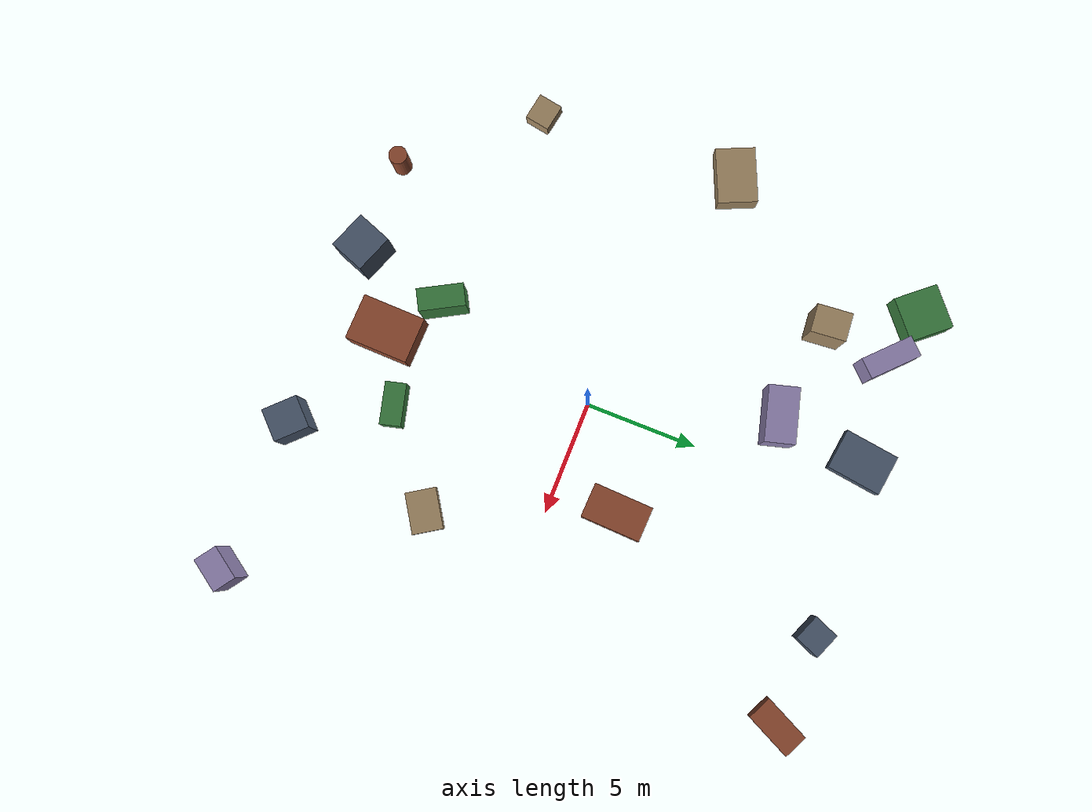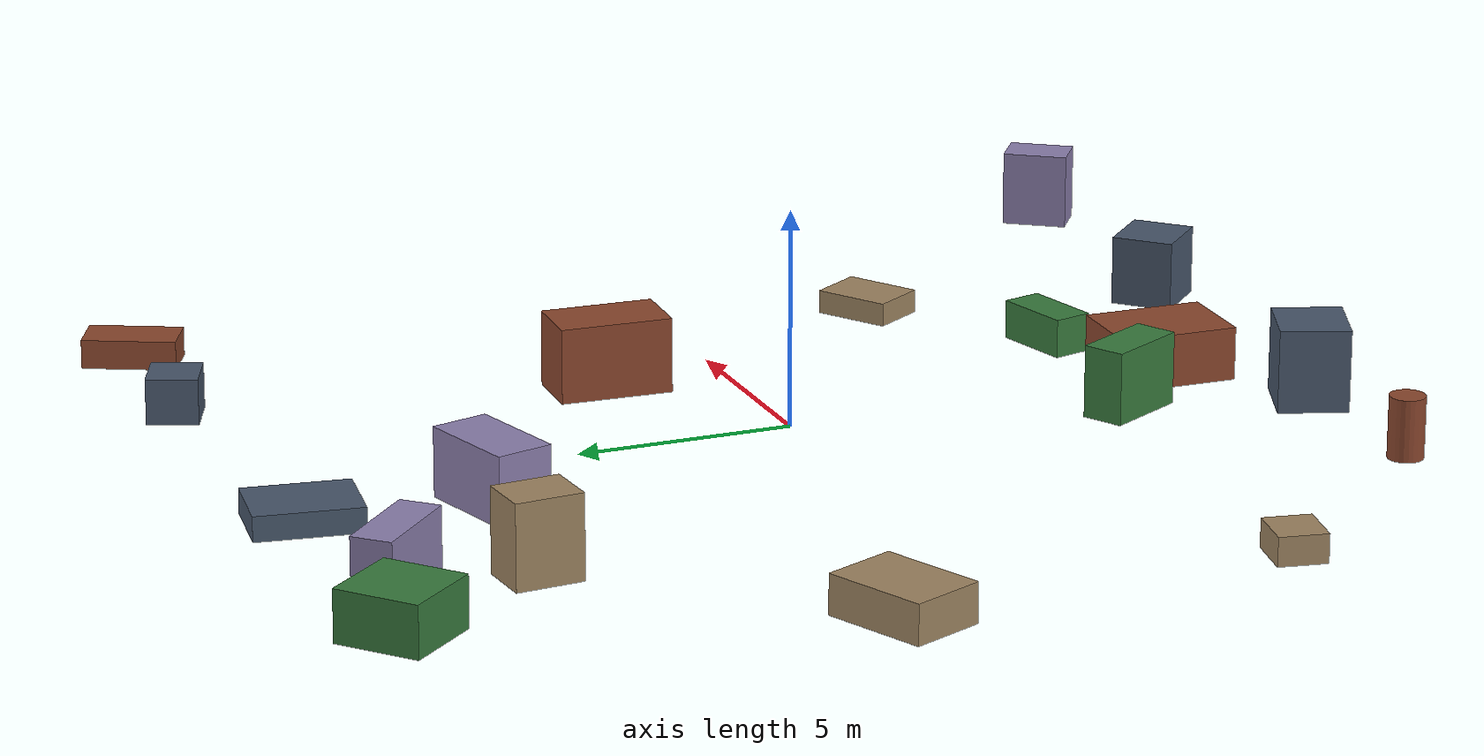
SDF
<sdf version="1.10">
 <world name="robotx_task1_uav_view">
  <gravity>0 0 -9.81</gravity>
  <physics name="physics" type="ode">
   <max_step_size>0.002</max_step_size>
   <real_time_factor>1.0</real_time_factor>
  </physics>
  <scene>
   <ambient>0.22 0.20 0.18 1.0</ambient>
   <background>0.74 0.55 0.44 1.0</background>
   <shadows>true</shadows>
   <grid>false</grid>
  </scene>
  <light name="sun" type="directional">
   <pose>0 0 300 0 0 0</pose>
   <diffuse>0.95 0.74 0.56 1.0</diffuse>
   <specular>1.00 0.87 0.71 1.0</specular>
   <direction>-0.40 0.20 -0.88</direction>
   <attenuation>
    <range>2500</range>
    <constant>0.85</constant>
    <linear>0.001</linear>
    <quadratic>0.00005</quadratic>
   </attenuation>
  </light>
  <plugin filename="gz-sim-physics-system" name="gz::sim::systems::Physics"/>
  <plugin filename="gz-sim-user-commands-system" name="gz::sim::systems::UserCommands"/>
  <plugin filename="gz-sim-scene-broadcaster-system" name="gz::sim::systems::SceneBroadcaster"/>
  <plugin filename="gz-sim-sensors-system" name="gz::sim::systems::Sensors">
   <render_engine>ogre2</render_engine>
  </plugin>
  <model name="scene_clutter_box_000">
   <static>true</static>
   <pose>-11.747 2.415 0.473 0 0 0.410127</pose>
   <link name="link">
    <visual name="v">
     <geometry><box><size>2.454 1.757 0.906</size></box></geometry>
     <material><ambient>0.45 0.38 0.32 1.0</ambient><diffuse>0.62 0.52 0.38 1.0</diffuse></material>
    </visual>
   </link>
  </model>
  <model name="scene_clutter_box_001">
   <static>true</static>
   <pose>5.690 12.446 0.553 0 0 1.177083</pose>
   <link name="link">
    <visual name="v">
     <geometry><box><size>1.171 1.220 1.065</size></box></geometry>
     <material><ambient>0.18 0.22 0.28 1.0</ambient><diffuse>0.28 0.34 0.42 1.0</diffuse></material>
    </visual>
   </link>
  </model>
  <model name="scene_clutter_box_002">
   <static>true</static>
   <pose>3.932 2.841 0.893 0 0 -0.041319</pose>
   <link name="link">
    <visual name="v">
     <geometry><box><size>1.508 2.615 1.746</size></box></geometry>
     <material><ambient>0.35 0.16 0.12 1.0</ambient><diffuse>0.55 0.28 0.18 1.0</diffuse></material>
    </visual>
   </link>
  </model>
  <model name="scene_clutter_box_003">
   <static>true</static>
   <pose>-8.846 12.027 0.605 0 0 -0.866386</pose>
   <link name="link">
    <visual name="v">
     <geometry><box><size>1.957 1.973 1.170</size></box></geometry>
     <material><ambient>0.12 0.30 0.14 1.0</ambient><diffuse>0.22 0.48 0.24 1.0</diffuse></material>
    </visual>
   </link>
  </model>
  <model name="scene_clutter_box_004">
   <static>true</static>
   <pose>-6.424 11.310 0.779 0 0 0.803604</pose>
   <link name="link">
    <visual name="v">
     <geometry><box><size>0.942 2.349 1.517</size></box></geometry>
     <material><ambient>0.40 0.35 0.50 1.0</ambient><diffuse>0.55 0.50 0.68 1.0</diffuse></material>
    </visual>
   </link>
  </model>
  <model name="scene_clutter_box_005">
   <static>true</static>
   <pose>-6.801 8.395 0.985 0 0 1.654139</pose>
   <link name="link">
    <visual name="v">
     <geometry><box><size>1.555 1.237 1.930</size></box></geometry>
     <material><ambient>0.45 0.38 0.32 1.0</ambient><diffuse>0.62 0.52 0.38 1.0</diffuse></material>
    </visual>
   </link>
  </model>
  <model name="scene_clutter_box_006">
   <static>true</static>
   <pose>-2.767 -11.475 0.979 0 0 -1.932173</pose>
   <link name="link">
    <visual name="v">
     <geometry><box><size>1.609 1.745 1.918</size></box></geometry>
     <material><ambient>0.18 0.22 0.28 1.0</ambient><diffuse>0.28 0.34 0.42 1.0</diffuse></material>
    </visual>
   </link>
  </model>
  <model name="scene_clutter_box_007">
   <static>true</static>
   <pose>9.750 12.271 0.359 0 0 -0.452150</pose>
   <link name="link">
    <visual name="v">
     <geometry><box><size>1.130 2.177 0.677</size></box></geometry>
     <material><ambient>0.35 0.16 0.12 1.0</ambient><diffuse>0.55 0.28 0.18 1.0</diffuse></material>
    </visual>
   </link>
  </model>
  <model name="scene_clutter_box_008">
   <static>true</static>
   <pose>-1.840 -7.434 0.857 0 0 2.073703</pose>
   <link name="link">
    <visual name="v">
     <geometry><box><size>2.029 0.988 1.673</size></box></geometry>
     <material><ambient>0.12 0.30 0.14 1.0</ambient><diffuse>0.22 0.48 0.24 1.0</diffuse></material>
    </visual>
   </link>
  </model>
  <model name="scene_clutter_box_009">
   <static>true</static>
   <pose>-2.437 7.837 0.817 0 0 0.264662</pose>
   <link name="link">
    <visual name="v">
     <geometry><box><size>2.447 1.343 1.595</size></box></geometry>
     <material><ambient>0.40 0.35 0.50 1.0</ambient><diffuse>0.55 0.50 0.68 1.0</diffuse></material>
    </visual>
   </link>
  </model>
  <model name="scene_clutter_box_010">
   <static>true</static>
   <pose>-11.437 -6.563 0.350 0 0 1.395791</pose>
   <link name="link">
    <visual name="v">
     <geometry><box><size>1.111 1.203 0.659</size></box></geometry>
     <material><ambient>0.45 0.38 0.32 1.0</ambient><diffuse>0.62 0.52 0.38 1.0</diffuse></material>
    </visual>
   </link>
  </model>
  <model name="scene_clutter_box_011">
   <static>true</static>
   <pose>5.351 -11.555 0.834 0 0 0.780943</pose>
   <link name="link">
    <visual name="v">
     <geometry><box><size>1.459 1.558 1.629</size></box></geometry>
     <material><ambient>0.18 0.22 0.28 1.0</ambient><diffuse>0.28 0.34 0.42 1.0</diffuse></material>
    </visual>
   </link>
  </model>
  <model name="scene_clutter_cyl_012">
   <static>true</static>
   <pose>-7.013 -11.603 0.763 0 0 -2.156860</pose>
   <link name="link">
    <visual name="v">
     <geometry><cylinder><radius>0.407</radius><length>1.425</length></cylinder></geometry>
     <material><ambient>0.35 0.16 0.12 1.0</ambient><diffuse>0.55 0.28 0.18 1.0</diffuse></material>
    </visual>
   </link>
  </model>
  <model name="scene_clutter_box_013">
   <static>true</static>
   <pose>3.089 -7.736 0.472 0 0 -1.321066</pose>
   <link name="link">
    <visual name="v">
     <geometry><box><size>0.928 1.867 0.905</size></box></geometry>
     <material><ambient>0.12 0.30 0.14 1.0</ambient><diffuse>0.22 0.48 0.24 1.0</diffuse></material>
    </visual>
   </link>
  </model>
  <model name="scene_clutter_box_014">
   <static>true</static>
   <pose>12.142 -11.737 0.918 0 0 -2.183948</pose>
   <link name="link">
    <visual name="v">
     <geometry><box><size>1.556 1.041 1.795</size></box></geometry>
     <material><ambient>0.40 0.35 0.50 1.0</ambient><diffuse>0.55 0.50 0.68 1.0</diffuse></material>
    </visual>
   </link>
  </model>
  <model name="scene_clutter_box_015">
   <static>true</static>
   <pose>6.832 -4.815 0.292 0 0 -2.572387</pose>
   <link name="link">
    <visual name="v">
     <geometry><box><size>1.805 1.345 0.545</size></box></geometry>
     <material><ambient>0.45 0.38 0.32 1.0</ambient><diffuse>0.62 0.52 0.38 1.0</diffuse></material>
    </visual>
   </link>
  </model>
  <model name="scene_clutter_box_016">
   <static>true</static>
   <pose>-1.937 11.892 0.309 0 0 3.003784</pose>
   <link name="link">
    <visual name="v">
     <geometry><box><size>1.811 2.434 0.577</size></box></geometry>
     <material><ambient>0.18 0.22 0.28 1.0</ambient><diffuse>0.28 0.34 0.42 1.0</diffuse></material>
    </visual>
   </link>
  </model>
  <model name="scene_clutter_box_017">
   <static>true</static>
   <pose>0.225 -9.232 0.639 0 0 -1.594535</pose>
   <link name="link">
    <visual name="v">
     <geometry><box><size>2.802 2.027 1.239</size></box></geometry>
     <material><ambient>0.35 0.16 0.12 1.0</ambient><diffuse>0.55 0.28 0.18 1.0</diffuse></material>
    </visual>
   </link>
  </model>
  <model name="uav_dataset_camera">
   <static>false</static>
   <pose>0 0 26 0 0 0</pose>
   <plugin filename="librobotx_overhead_motion_plugin.dylib" name="robotx::OverheadMotionPlugin">
    <radius_x_m>10.54992</radius_x_m>
    <radius_y_m>8.41897</radius_y_m>
    <angular_speed_rad_s>0.044405</angular_speed_rad_s>
    <phase_rad>4.386590</phase_rad>
    <z_wobble_m>0.03057</z_wobble_m>
    <z_wobble_hz>0.04029</z_wobble_hz>
    <z_wobble_phase_rad>5.488164</z_wobble_phase_rad>
   </plugin>
   <link name="camera_link">
    <gravity>false</gravity>
    <sensor name="top_down_rgb" type="camera">
     <always_on>true</always_on>
     <update_rate>20</update_rate>
     <pose>0 0 0 0 1.57079632679 0</pose>
     <camera>
      <horizontal_fov>1.05</horizontal_fov>
      <image><width>1920</width><height>1080</height><format>R8G8B8</format></image>
      <clip><near>0.2</near><far>600</far></clip>
     </camera>
     <topic>/robotx/uav/camera/image_raw</topic>
     <visualize>true</visualize>
    </sensor>
   </link>
  </model>
 </world>
</sdf>
